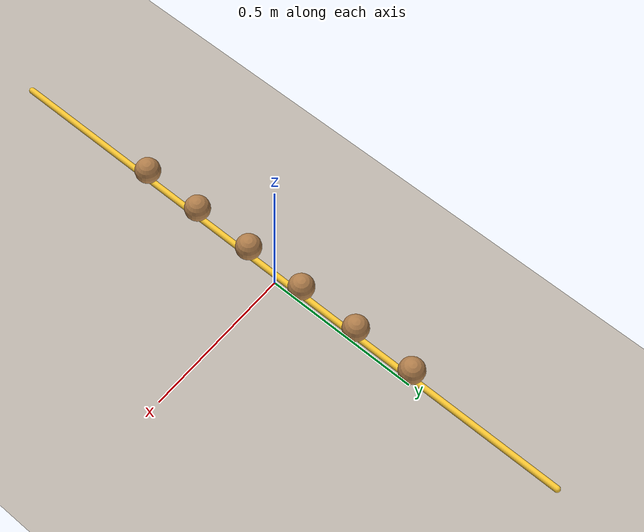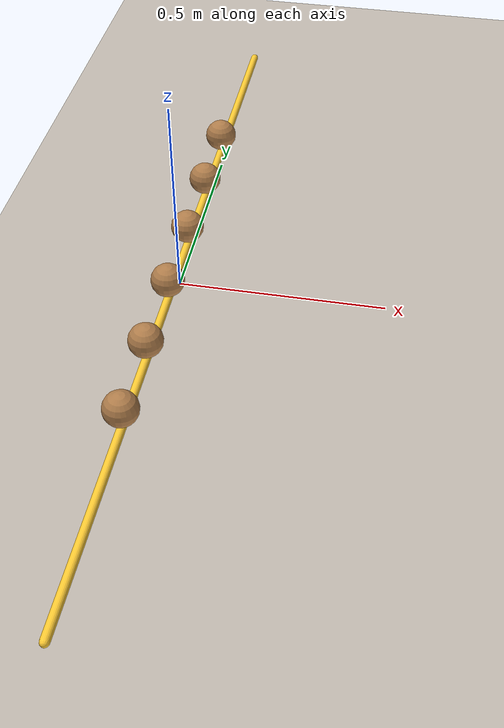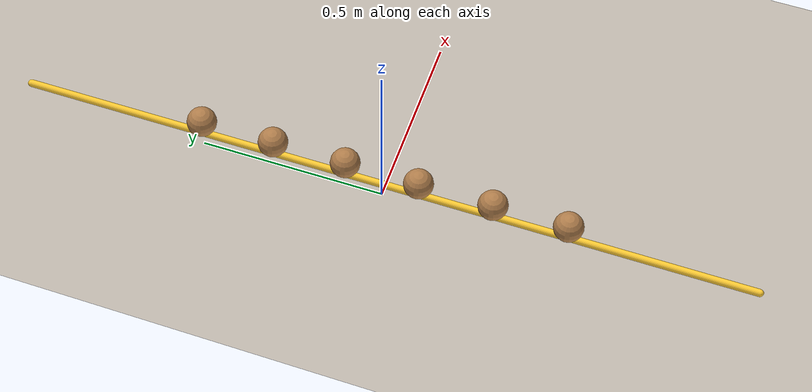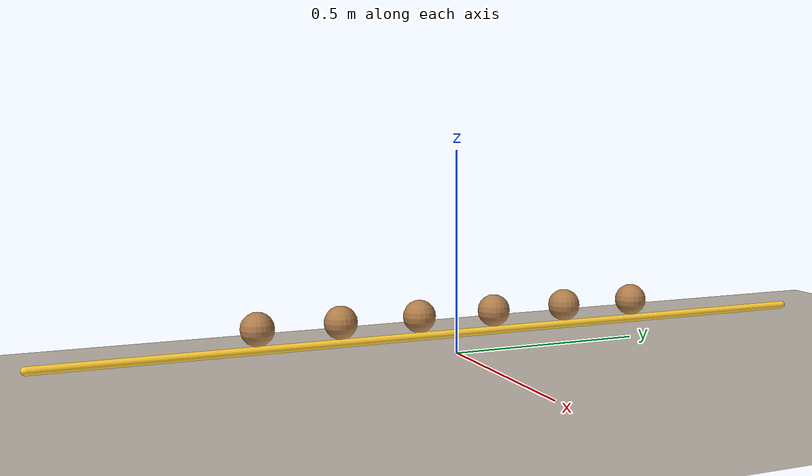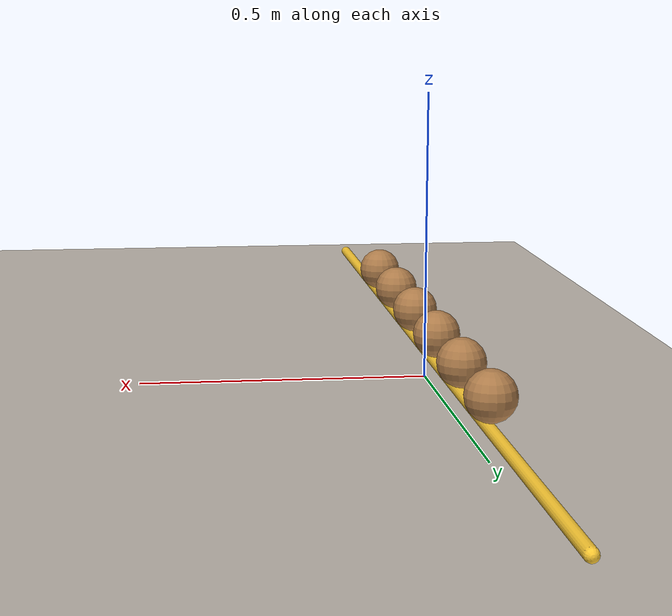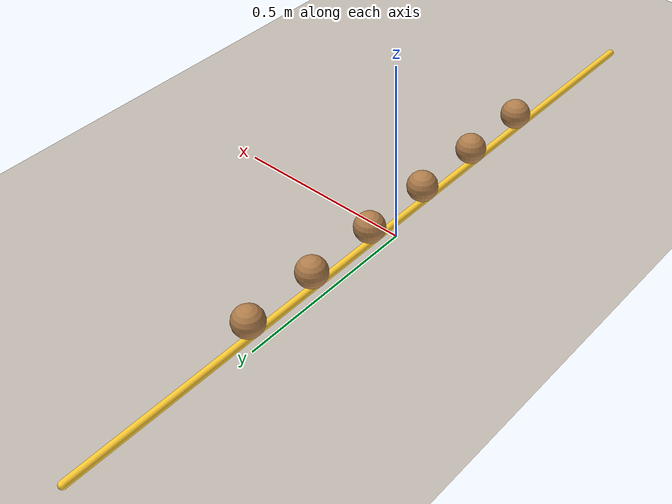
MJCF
<mujoco model="dm-lqr-6-2">
  <include file="../../common/materials.xml"/>

  <compiler angle="radian" inertiafromgeom="true"/>
  <option timestep="0.01" integrator="RK4" gravity="0 0 -9.81"/>

  <statistic center="0 0 0.12" extent="2.8" />

  <default>
    <geom type="sphere" size="0.04" density="300" material="self" contype="0" conaffinity="0"/>
    <joint type="slide" axis="1 0 0" damping="0.3" limited="true" range="-1.5 1.5"/>
    <motor ctrlrange="-1 1" ctrllimited="true" gear="1"/>
  </default>

  <asset>
    <texture name="skybox" type="skybox" builtin="gradient" rgb1="0.4 0.4 0.4" rgb2="0 0 0"
      width="512"
      height="512" />
    <texture name="motphys-ground" type="2d" file="../../common/motphys-ground.png" />
    <material name="motphys-ground" texture="motphys-ground" texuniform="true"
      texrepeat="0.4 0.4" />
  </asset>

  <worldbody>
    <light name="light" dir="0 1 -1" directional="true" />
    <camera name="side" pos="0 -4.2 0" quat="0.707 0.707 0 0" mode="trackcom" />
    <camera name="back" pos="-1.0 -2.6 1.4" xyaxes="0.55 -0.84 0 0.24 0.16 0.96" />
    <geom name="ground" type="plane" pos="0 0 -0.02" size="0 0 0.01"
      material="motphys-ground"
      contype="0"
      conaffinity="0" />
    <geom
      name="origin"
      type="capsule"
      fromto="0 -1.0 0.05 0 1.0 0.05"
      size="0.01"
      rgba="1 0.8 0.2 1"
      contype="0"
      conaffinity="0"/>

    <body name="m0" pos="0 -0.5 0.1">
      <joint name="q0"/>
      <geom name="geom_0"/>
    </body>

    <body name="m1" pos="0 -0.3 0.1">
      <joint name="q1"/>
      <geom name="geom_1"/>
    </body>

    <body name="m2" pos="0 -0.1 0.1">
      <joint name="q2"/>
      <geom name="geom_2"/>
    </body>

    <body name="m3" pos="0 0.1 0.1">
      <joint name="q3"/>
      <geom name="geom_3"/>
    </body>

    <body name="m4" pos="0 0.3 0.1">
      <joint name="q4"/>
      <geom name="geom_4"/>
    </body>

    <body name="m5" pos="0 0.5 0.1">
      <joint name="q5"/>
      <geom name="geom_5"/>
    </body>

  </worldbody>

  <tendon>
    <fixed name="rope_01" limited="false" width="0.016" rgba="0.9 0.82 0.74 1" stiffness="50" damping="2" springlength="0">
      <joint joint="q0" coef="-1"/>
      <joint joint="q1" coef="1"/>
    </fixed>
    <fixed name="rope_12" stiffness="50" damping="2" springlength="0" width="0.016" rgba="0.9 0.82 0.74 1">
      <joint joint="q1" coef="-1"/>
      <joint joint="q2" coef="1"/>
    </fixed>
    <fixed name="rope_23" stiffness="50" damping="2" springlength="0" width="0.016" rgba="0.9 0.82 0.74 1">
      <joint joint="q2" coef="-1"/>
      <joint joint="q3" coef="1"/>
    </fixed>
    <fixed name="rope_34" stiffness="50" damping="2" springlength="0" width="0.016" rgba="0.9 0.82 0.74 1">
      <joint joint="q3" coef="-1"/>
      <joint joint="q4" coef="1"/>
    </fixed>
    <fixed name="rope_45" stiffness="50" damping="2" springlength="0" width="0.016" rgba="0.9 0.82 0.74 1">
      <joint joint="q4" coef="-1"/>
      <joint joint="q5" coef="1"/>
    </fixed>
  </tendon>

  <actuator>
    <motor name="motor_4" joint="q4"/>
    <motor name="motor_5" joint="q5"/>
  </actuator>
</mujoco>

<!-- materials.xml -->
<!--
Common textures, colors and materials to be used throughout this suite. Some
materials such as xxx_highlight are activated on occurence of certain events,
for example receiving a positive reward.
-->
<mujoco>
  <asset>
    <texture name="grid" type="2d" builtin="checker" mark="edge" rgb1="0.4314 0.5294 0.6431"
      rgb2="0.8157 0.8549 0.9059" markrgb="0.8 0.8 0.8" width="300" height="300" />
    <material name="grid" texture="grid" texrepeat="1 1" texuniform="true" reflectance=".2" />
    <material name="self" rgba=".7 .5 .3 1" />
    <material name="self_default" rgba=".7 .5 .3 1" />
    <material name="self_highlight" rgba="0 .5 .3 1" />
    <material name="effector" rgba=".7 .4 .2 1" />
    <material name="effector_default" rgba=".7 .4 .2 1" />
    <material name="effector_highlight" rgba="0 .5 .3 1" />
    <material name="decoration" rgba=".3 .5 .7 1" />
    <material name="eye" rgba="0 .2 1 1" />
    <material name="target" rgba=".6 .3 .3 1" />
    <material name="target_default" rgba=".6 .3 .3 1" />
    <material name="target_highlight" rgba=".6 .3 .3 .4" />
    <material name="site" rgba=".5 .5 .5 .3" />
  </asset>
</mujoco>
